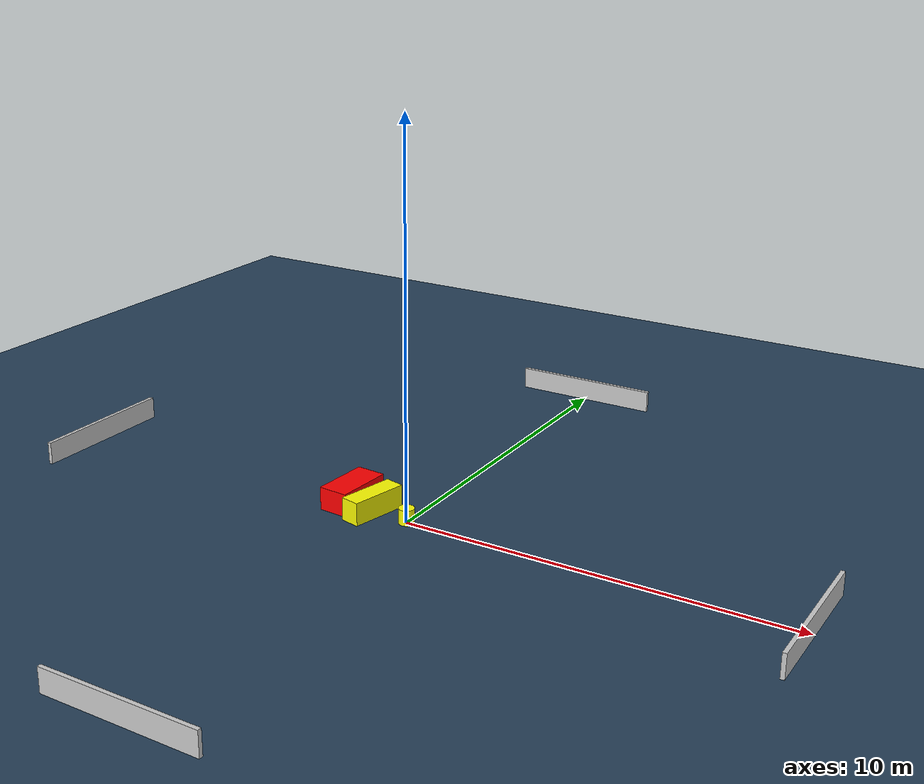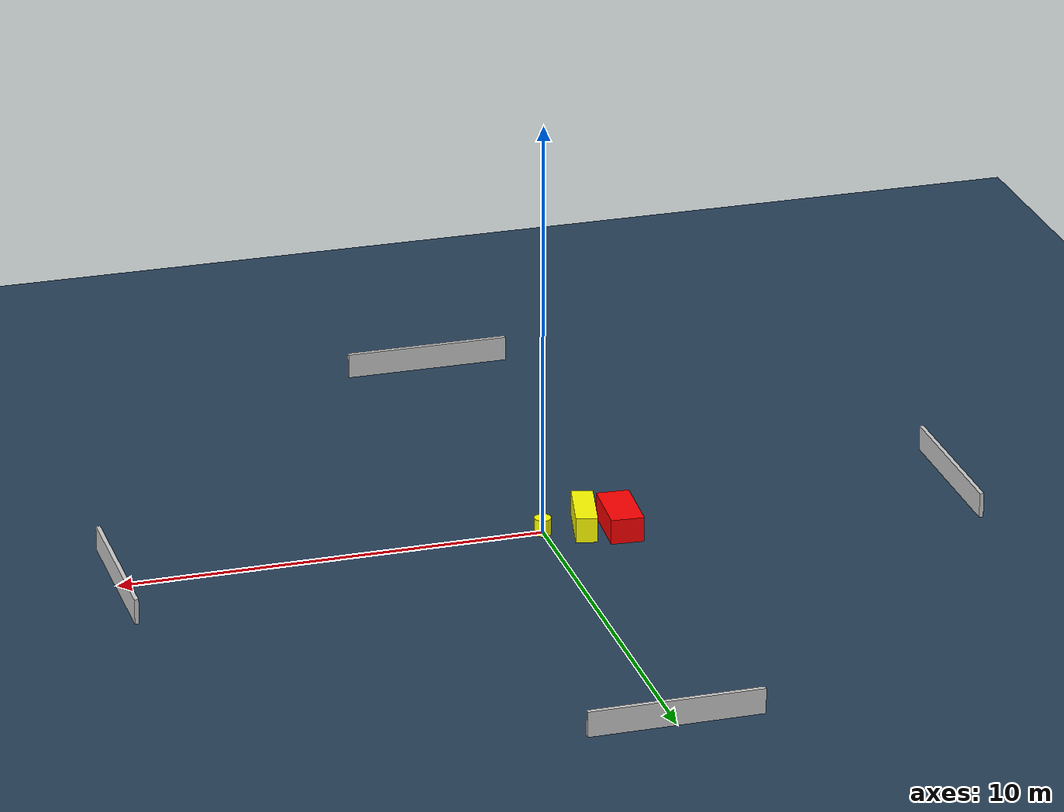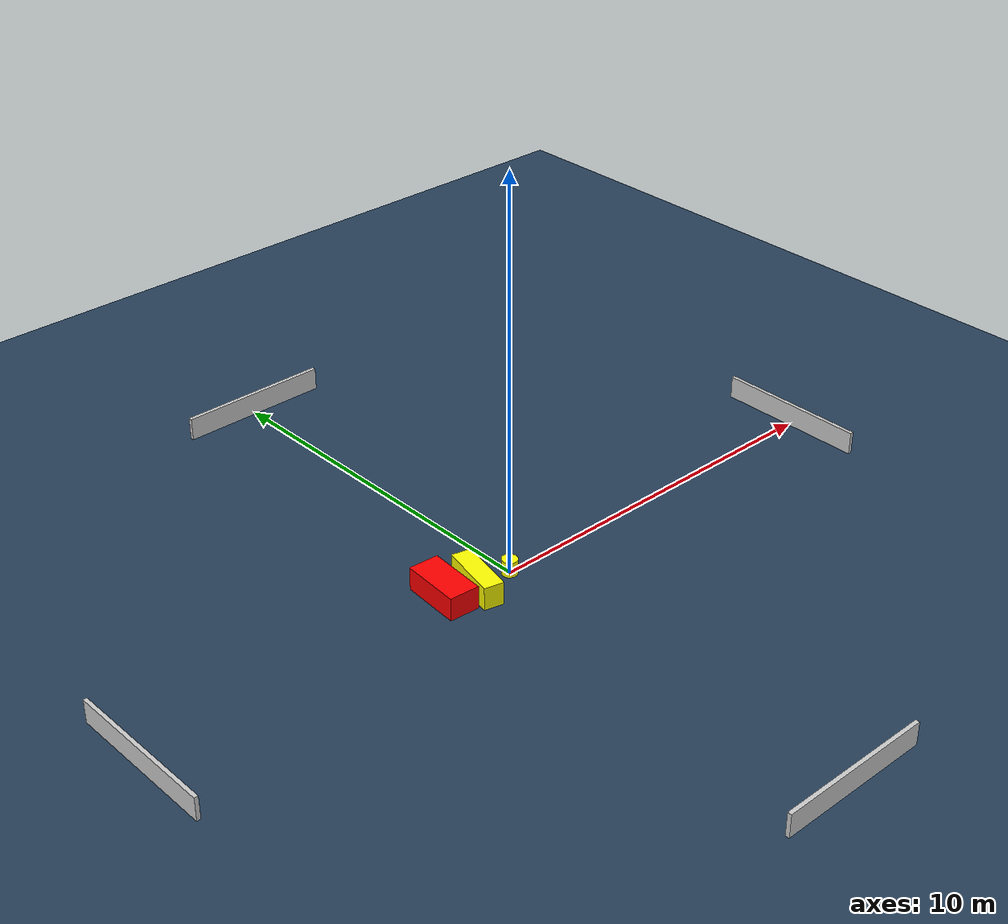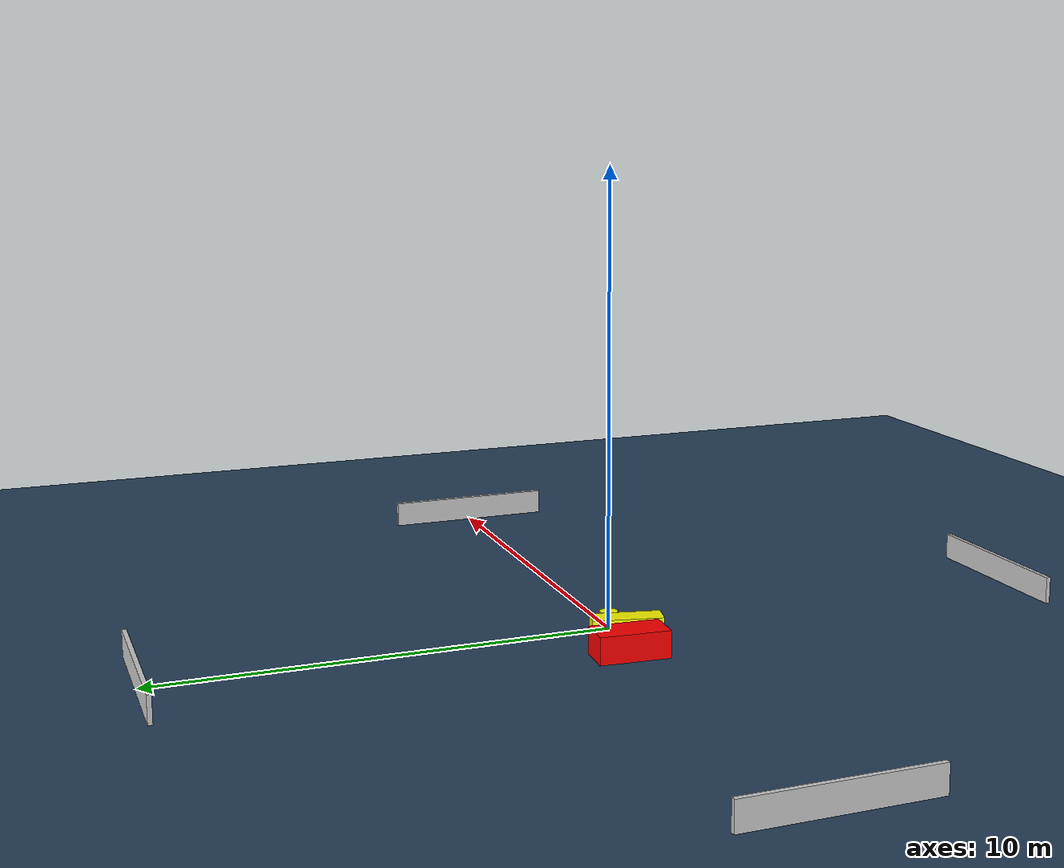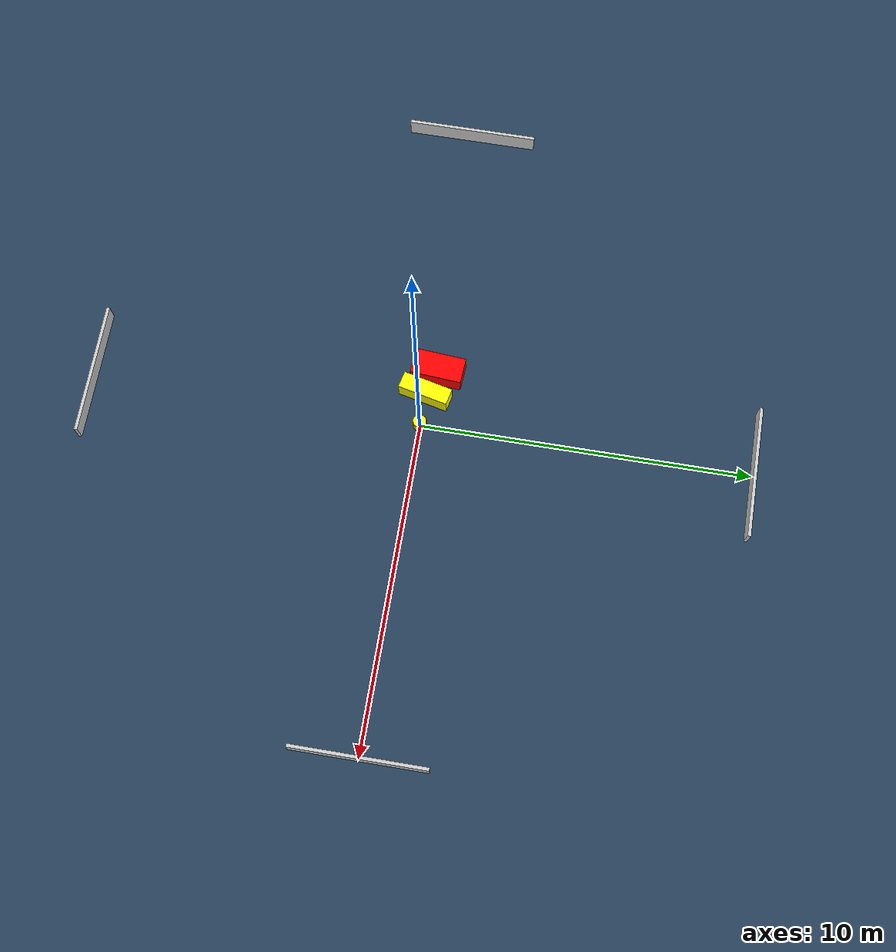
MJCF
<?xml version="1.0" ?>
<mujoco model="generated_environment">
  <option timestep="0.01" integrator="RK4" cone="elliptic"/>
  <default>
    <geom density="1"/>
  </default>
  <asset>
    <texture builtin="gradient" height="3072" name="skybox" rgb1="0.3 0.5 0.7" rgb2="0 0 0" type="skybox" width="512"/>
    <texture builtin="checker" height="300" name="groundplane" rgb1="0.2 0.3 0.4" rgb2="0.1 0.2 0.3" type="2d" width="300"/>
    <material name="groundplane" reflectance="0.2" texrepeat="5 5" texture="groundplane"/>
  </asset>
  <worldbody>
    <light dir="0 0 -1" directional="true" pos="0 0 1.5"/>
    <geom condim="3" friction="0.5 0.005 0.001" material="groundplane" name="floor" pos="0 0 0" size="0 0 0.05" type="plane"/>
    <body name="walls">
      <geom name="wall_1" condim="4" pos="-10.0 0.0 0.3" rgba="0.800000011920929 0.800000011920929 0.800000011920929 1.0" size="0.05 2.0 0.3" type="box"/>
      <geom name="wall_2" condim="4" pos="10.0 0.0 0.3" rgba="0.800000011920929 0.800000011920929 0.800000011920929 1.0" size="0.05 2.0 0.3" type="box"/>
      <geom name="wall_3" condim="4" pos="0.0 -10.0 0.3" rgba="0.800000011920929 0.800000011920929 0.800000011920929 1.0" size="2.0 0.05 0.3" type="box"/>
      <geom name="wall_4" condim="4" pos="0.0 10.0 0.3" rgba="0.800000011920929 0.800000011920929 0.800000011920929 1.0" size="2.0 0.05 0.3" type="box"/>
    </body>
    <body name="robot">
      <joint name="joint_x" type="slide" pos="0 0 0" axis="1 0 0"/>
      <joint name="joint_y" type="slide" pos="0 0 0" axis="0 1 0"/>
      <geom name="robot" type="cylinder" pos="0.0 0.0 0.2" size="0.2 0.2 0.0" mass="5.0" friction="1.0 0.005 0.0001" condim="4" rgba="1.0 1.0 0.0 1.0"/>
    </body>
    <body name="obstacle_1_movable">
      <geom name="obstacle_1_movable" condim="4" pos="-0.9948839545747475 0.004227435191234765 0.3" euler="0 0 77.36115410107915" friction="0.0 0.005 0.001" rgba="1.0 1.0 0.0 1.0" size="0.7694555589471692 0.25518125139702563 0.3" type="box" mass="0.1"/>
      <joint type="free"/>
    </body>
    <body name="obstacle_2_static">
      <geom name="obstacle_2_static" condim="4" pos="-1.7751491830763444 0.2650846223766095 0.3" euler="0 0 175.95092935646386" friction="0.0 0.005 0.001" rgba="1.0 0.0 0.0 1.0" size="0.3908028108541217 0.774609932074046 0.3" type="box"/>
    </body>
  </worldbody>
  <actuator>
    <motor name="actuator_x" joint="joint_x" gear="1" ctrlrange="-1 1"/>
    <motor name="actuator_y" joint="joint_y" gear="1" ctrlrange="-1 1"/>
  </actuator>
</mujoco>
